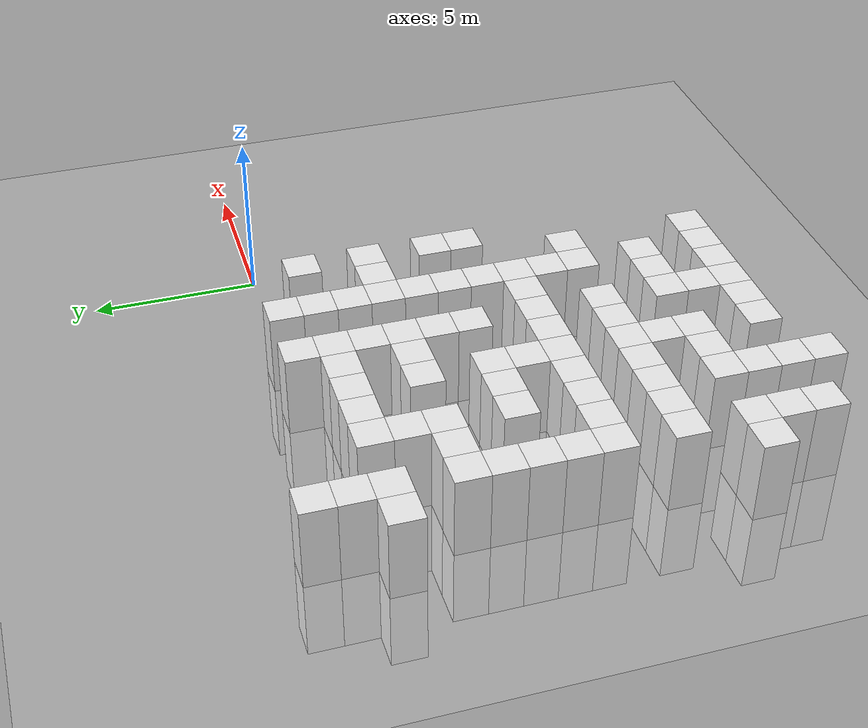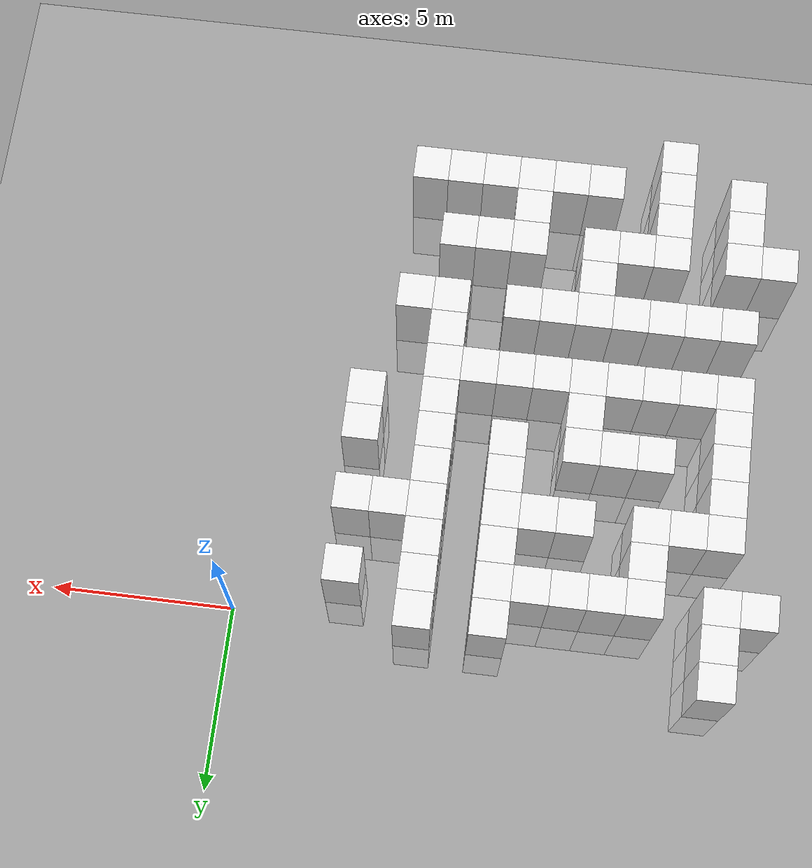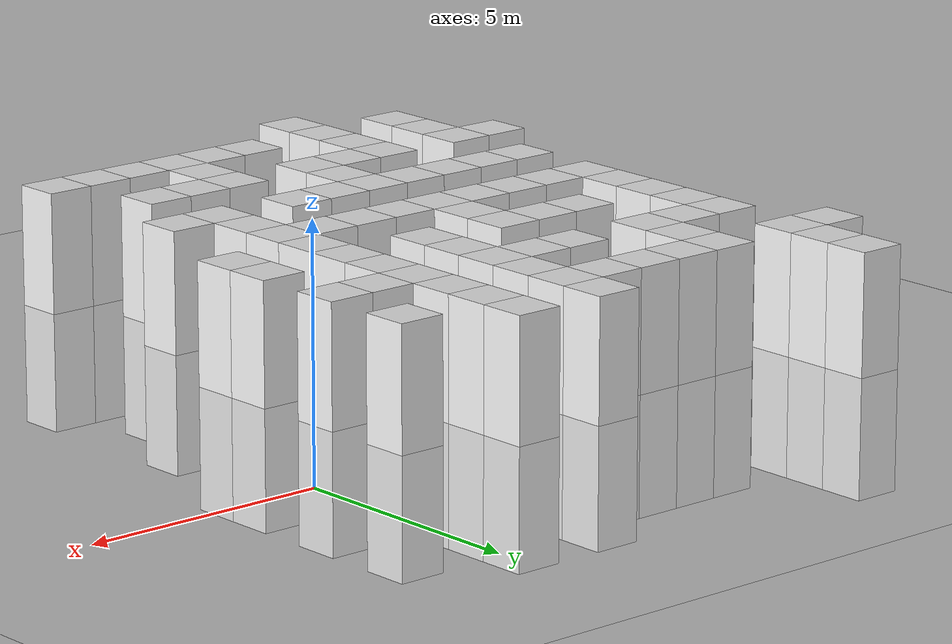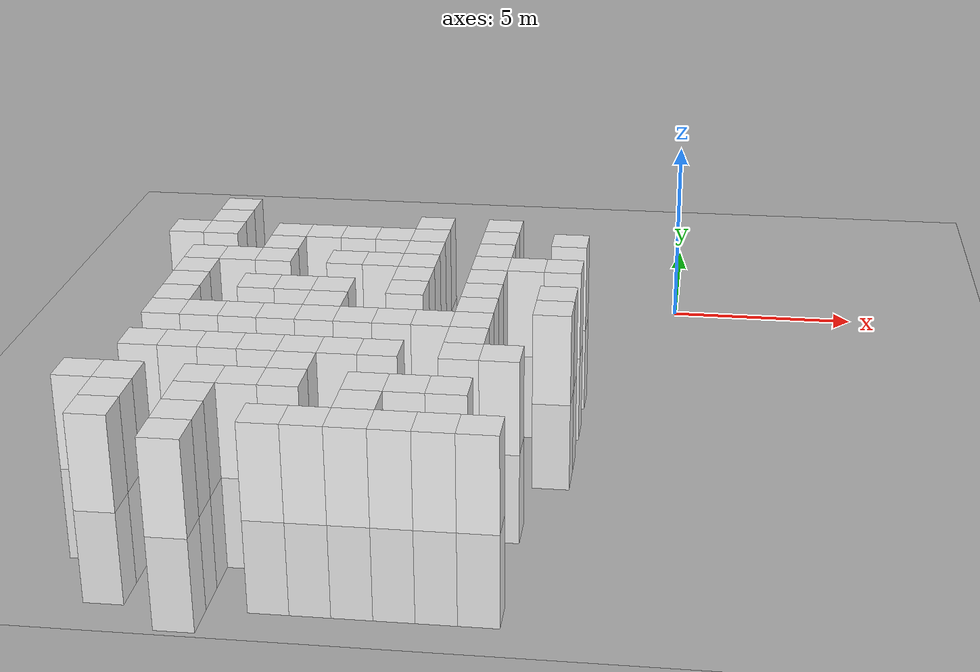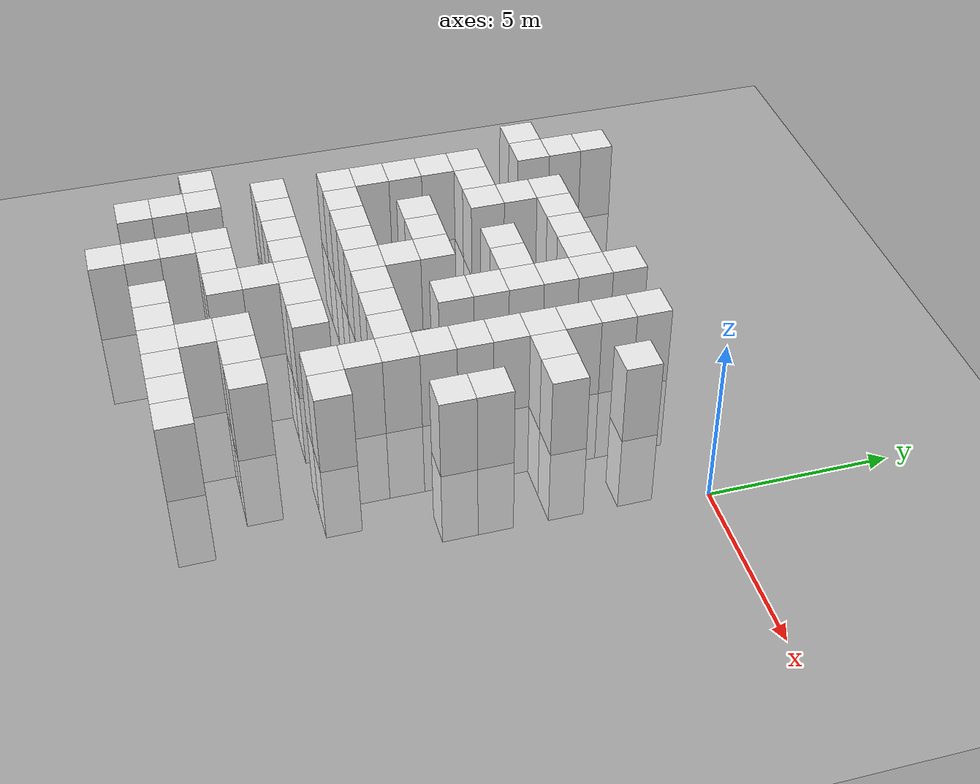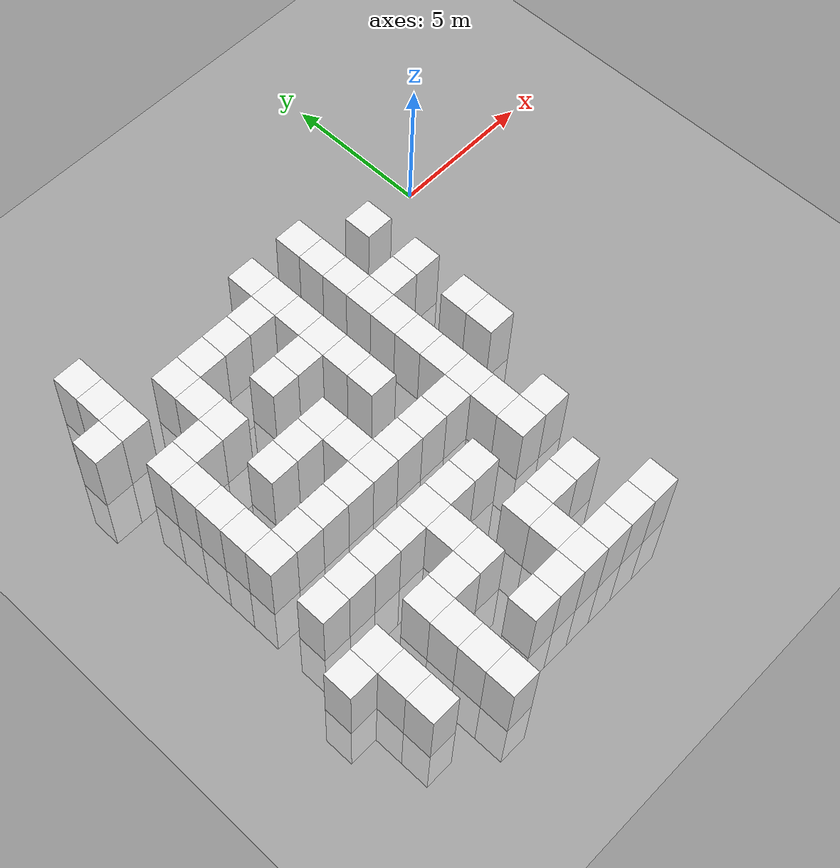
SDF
<sdf version="1.6">
 <world name="default">
  <model name="ground_plane">
   <static>1</static>
   <link name="link">
    <collision name="collision">
     <geometry><plane><normal>0 0 1</normal><size>100 100</size></plane></geometry>
     <surface><friction><ode><mu>100</mu><mu2>50</mu2></ode></friction></surface>
    </collision>
    <visual name="visual">
     <cast_shadows>0</cast_shadows>
     <geometry><plane><normal>0 0 1</normal><size>100 100</size></plane></geometry>
     <material>
      <script><uri>file://media/materials/scripts/gazebo.material</uri><name>Gazebo/Grey</name></script>
     </material>
    </visual>
   </link>
  </model>
  <model name="Unit_box_-13_1">
   <pose>-13 1 0 0 0 0</pose>
   <link name="Unit_box_-13_1_collision">
    <collision name="collision"><geometry><box><size>1 1 5</size></box></geometry></collision>
    <visual name="Unit_box_-13_1_visual">
     <geometry><box><size>1 1 5</size></box></geometry>
     <material>
      <script><name>Gazebo/White</name><uri>file://media/materials/scripts/gazebo.material</uri></script>
     </material>
    </visual>
   </link>
   <static>1</static>
  </model>
  <model name="Unit_box_-13_0">
   <pose>-13 0 0 0 0 0</pose>
   <link name="Unit_box_-13_0_collision">
    <collision name="collision"><geometry><box><size>1 1 5</size></box></geometry></collision>
    <visual name="Unit_box_-13_0_visual">
     <geometry><box><size>1 1 5</size></box></geometry>
     <material>
      <script><name>Gazebo/White</name><uri>file://media/materials/scripts/gazebo.material</uri></script>
     </material>
    </visual>
   </link>
   <static>1</static>
  </model>
  <model name="Unit_box_-7_0">
   <pose>-7 0 0 0 0 0</pose>
   <link name="Unit_box_-7_0_collision">
    <collision name="collision"><geometry><box><size>1 1 5</size></box></geometry></collision>
    <visual name="Unit_box_-7_0_visual">
     <geometry><box><size>1 1 5</size></box></geometry>
     <material>
      <script><name>Gazebo/White</name><uri>file://media/materials/scripts/gazebo.material</uri></script>
     </material>
    </visual>
   </link>
   <static>1</static>
  </model>
  <model name="Unit_box_-5_0">
   <pose>-5 0 0 0 0 0</pose>
   <link name="Unit_box_-5_0_collision">
    <collision name="collision"><geometry><box><size>1 1 5</size></box></geometry></collision>
    <visual name="Unit_box_-5_0_visual">
     <geometry><box><size>1 1 5</size></box></geometry>
     <material>
      <script><name>Gazebo/White</name><uri>file://media/materials/scripts/gazebo.material</uri></script>
     </material>
    </visual>
   </link>
   <static>1</static>
  </model>
  <model name="Unit_box_-14_-1">
   <pose>-14 -1 0 0 0 0</pose>
   <link name="Unit_box_-14_-1_collision">
    <collision name="collision"><geometry><box><size>1 1 5</size></box></geometry></collision>
    <visual name="Unit_box_-14_-1_visual">
     <geometry><box><size>1 1 5</size></box></geometry>
     <material>
      <script><name>Gazebo/White</name><uri>file://media/materials/scripts/gazebo.material</uri></script>
     </material>
    </visual>
   </link>
   <static>1</static>
  </model>
  <model name="Unit_box_-13_-1">
   <pose>-13 -1 0 0 0 0</pose>
   <link name="Unit_box_-13_-1_collision">
    <collision name="collision"><geometry><box><size>1 1 5</size></box></geometry></collision>
    <visual name="Unit_box_-13_-1_visual">
     <geometry><box><size>1 1 5</size></box></geometry>
     <material>
      <script><name>Gazebo/White</name><uri>file://media/materials/scripts/gazebo.material</uri></script>
     </material>
    </visual>
   </link>
   <static>1</static>
  </model>
  <model name="Unit_box_-11_-1">
   <pose>-11 -1 0 0 0 0</pose>
   <link name="Unit_box_-11_-1_collision">
    <collision name="collision"><geometry><box><size>1 1 5</size></box></geometry></collision>
    <visual name="Unit_box_-11_-1_visual">
     <geometry><box><size>1 1 5</size></box></geometry>
     <material>
      <script><name>Gazebo/White</name><uri>file://media/materials/scripts/gazebo.material</uri></script>
     </material>
    </visual>
   </link>
   <static>1</static>
  </model>
  <model name="Unit_box_-10_-1">
   <pose>-10 -1 0 0 0 0</pose>
   <link name="Unit_box_-10_-1_collision">
    <collision name="collision"><geometry><box><size>1 1 5</size></box></geometry></collision>
    <visual name="Unit_box_-10_-1_visual">
     <geometry><box><size>1 1 5</size></box></geometry>
     <material>
      <script><name>Gazebo/White</name><uri>file://media/materials/scripts/gazebo.material</uri></script>
     </material>
    </visual>
   </link>
   <static>1</static>
  </model>
  <model name="Unit_box_-9_-1">
   <pose>-9 -1 0 0 0 0</pose>
   <link name="Unit_box_-9_-1_collision">
    <collision name="collision"><geometry><box><size>1 1 5</size></box></geometry></collision>
    <visual name="Unit_box_-9_-1_visual">
     <geometry><box><size>1 1 5</size></box></geometry>
     <material>
      <script><name>Gazebo/White</name><uri>file://media/materials/scripts/gazebo.material</uri></script>
     </material>
    </visual>
   </link>
   <static>1</static>
  </model>
  <model name="Unit_box_-8_-1">
   <pose>-8 -1 0 0 0 0</pose>
   <link name="Unit_box_-8_-1_collision">
    <collision name="collision"><geometry><box><size>1 1 5</size></box></geometry></collision>
    <visual name="Unit_box_-8_-1_visual">
     <geometry><box><size>1 1 5</size></box></geometry>
     <material>
      <script><name>Gazebo/White</name><uri>file://media/materials/scripts/gazebo.material</uri></script>
     </material>
    </visual>
   </link>
   <static>1</static>
  </model>
  <model name="Unit_box_-7_-1">
   <pose>-7 -1 0 0 0 0</pose>
   <link name="Unit_box_-7_-1_collision">
    <collision name="collision"><geometry><box><size>1 1 5</size></box></geometry></collision>
    <visual name="Unit_box_-7_-1_visual">
     <geometry><box><size>1 1 5</size></box></geometry>
     <material>
      <script><name>Gazebo/White</name><uri>file://media/materials/scripts/gazebo.material</uri></script>
     </material>
    </visual>
   </link>
   <static>1</static>
  </model>
  <model name="Unit_box_-5_-1">
   <pose>-5 -1 0 0 0 0</pose>
   <link name="Unit_box_-5_-1_collision">
    <collision name="collision"><geometry><box><size>1 1 5</size></box></geometry></collision>
    <visual name="Unit_box_-5_-1_visual">
     <geometry><box><size>1 1 5</size></box></geometry>
     <material>
      <script><name>Gazebo/White</name><uri>file://media/materials/scripts/gazebo.material</uri></script>
     </material>
    </visual>
   </link>
   <static>1</static>
  </model>
  <model name="Unit_box_-3_-1">
   <pose>-3 -1 0 0 0 0</pose>
   <link name="Unit_box_-3_-1_collision">
    <collision name="collision"><geometry><box><size>1 1 5</size></box></geometry></collision>
    <visual name="Unit_box_-3_-1_visual">
     <geometry><box><size>1 1 5</size></box></geometry>
     <material>
      <script><name>Gazebo/White</name><uri>file://media/materials/scripts/gazebo.material</uri></script>
     </material>
    </visual>
   </link>
   <static>1</static>
  </model>
  <model name="Unit_box_-11_-2">
   <pose>-11 -2 0 0 0 0</pose>
   <link name="Unit_box_-11_-2_collision">
    <collision name="collision"><geometry><box><size>1 1 5</size></box></geometry></collision>
    <visual name="Unit_box_-11_-2_visual">
     <geometry><box><size>1 1 5</size></box></geometry>
     <material>
      <script><name>Gazebo/White</name><uri>file://media/materials/scripts/gazebo.material</uri></script>
     </material>
    </visual>
   </link>
   <static>1</static>
  </model>
  <model name="Unit_box_-7_-2">
   <pose>-7 -2 0 0 0 0</pose>
   <link name="Unit_box_-7_-2_collision">
    <collision name="collision"><geometry><box><size>1 1 5</size></box></geometry></collision>
    <visual name="Unit_box_-7_-2_visual">
     <geometry><box><size>1 1 5</size></box></geometry>
     <material>
      <script><name>Gazebo/White</name><uri>file://media/materials/scripts/gazebo.material</uri></script>
     </material>
    </visual>
   </link>
   <static>1</static>
  </model>
  <model name="Unit_box_-5_-2">
   <pose>-5 -2 0 0 0 0</pose>
   <link name="Unit_box_-5_-2_collision">
    <collision name="collision"><geometry><box><size>1 1 5</size></box></geometry></collision>
    <visual name="Unit_box_-5_-2_visual">
     <geometry><box><size>1 1 5</size></box></geometry>
     <material>
      <script><name>Gazebo/White</name><uri>file://media/materials/scripts/gazebo.material</uri></script>
     </material>
    </visual>
   </link>
   <static>1</static>
  </model>
  <model name="Unit_box_-13_-3">
   <pose>-13 -3 0 0 0 0</pose>
   <link name="Unit_box_-13_-3_collision">
    <collision name="collision"><geometry><box><size>1 1 5</size></box></geometry></collision>
    <visual name="Unit_box_-13_-3_visual">
     <geometry><box><size>1 1 5</size></box></geometry>
     <material>
      <script><name>Gazebo/White</name><uri>file://media/materials/scripts/gazebo.material</uri></script>
     </material>
    </visual>
   </link>
   <static>1</static>
  </model>
  <model name="Unit_box_-12_-3">
   <pose>-12 -3 0 0 0 0</pose>
   <link name="Unit_box_-12_-3_collision">
    <collision name="collision"><geometry><box><size>1 1 5</size></box></geometry></collision>
    <visual name="Unit_box_-12_-3_visual">
     <geometry><box><size>1 1 5</size></box></geometry>
     <material>
      <script><name>Gazebo/White</name><uri>file://media/materials/scripts/gazebo.material</uri></script>
     </material>
    </visual>
   </link>
   <static>1</static>
  </model>
  <model name="Unit_box_-11_-3">
   <pose>-11 -3 0 0 0 0</pose>
   <link name="Unit_box_-11_-3_collision">
    <collision name="collision"><geometry><box><size>1 1 5</size></box></geometry></collision>
    <visual name="Unit_box_-11_-3_visual">
     <geometry><box><size>1 1 5</size></box></geometry>
     <material>
      <script><name>Gazebo/White</name><uri>file://media/materials/scripts/gazebo.material</uri></script>
     </material>
    </visual>
   </link>
   <static>1</static>
  </model>
  <model name="Unit_box_-9_-3">
   <pose>-9 -3 0 0 0 0</pose>
   <link name="Unit_box_-9_-3_collision">
    <collision name="collision"><geometry><box><size>1 1 5</size></box></geometry></collision>
    <visual name="Unit_box_-9_-3_visual">
     <geometry><box><size>1 1 5</size></box></geometry>
     <material>
      <script><name>Gazebo/White</name><uri>file://media/materials/scripts/gazebo.material</uri></script>
     </material>
    </visual>
   </link>
   <static>1</static>
  </model>
  <model name="Unit_box_-8_-3">
   <pose>-8 -3 0 0 0 0</pose>
   <link name="Unit_box_-8_-3_collision">
    <collision name="collision"><geometry><box><size>1 1 5</size></box></geometry></collision>
    <visual name="Unit_box_-8_-3_visual">
     <geometry><box><size>1 1 5</size></box></geometry>
     <material>
      <script><name>Gazebo/White</name><uri>file://media/materials/scripts/gazebo.material</uri></script>
     </material>
    </visual>
   </link>
   <static>1</static>
  </model>
  <model name="Unit_box_-7_-3">
   <pose>-7 -3 0 0 0 0</pose>
   <link name="Unit_box_-7_-3_collision">
    <collision name="collision"><geometry><box><size>1 1 5</size></box></geometry></collision>
    <visual name="Unit_box_-7_-3_visual">
     <geometry><box><size>1 1 5</size></box></geometry>
     <material>
      <script><name>Gazebo/White</name><uri>file://media/materials/scripts/gazebo.material</uri></script>
     </material>
    </visual>
   </link>
   <static>1</static>
  </model>
  <model name="Unit_box_-5_-3">
   <pose>-5 -3 0 0 0 0</pose>
   <link name="Unit_box_-5_-3_collision">
    <collision name="collision"><geometry><box><size>1 1 5</size></box></geometry></collision>
    <visual name="Unit_box_-5_-3_visual">
     <geometry><box><size>1 1 5</size></box></geometry>
     <material>
      <script><name>Gazebo/White</name><uri>file://media/materials/scripts/gazebo.material</uri></script>
     </material>
    </visual>
   </link>
   <static>1</static>
  </model>
  <model name="Unit_box_-4_-3">
   <pose>-4 -3 0 0 0 0</pose>
   <link name="Unit_box_-4_-3_collision">
    <collision name="collision"><geometry><box><size>1 1 5</size></box></geometry></collision>
    <visual name="Unit_box_-4_-3_visual">
     <geometry><box><size>1 1 5</size></box></geometry>
     <material>
      <script><name>Gazebo/White</name><uri>file://media/materials/scripts/gazebo.material</uri></script>
     </material>
    </visual>
   </link>
   <static>1</static>
  </model>
  <model name="Unit_box_-3_-3">
   <pose>-3 -3 0 0 0 0</pose>
   <link name="Unit_box_-3_-3_collision">
    <collision name="collision"><geometry><box><size>1 1 5</size></box></geometry></collision>
    <visual name="Unit_box_-3_-3_visual">
     <geometry><box><size>1 1 5</size></box></geometry>
     <material>
      <script><name>Gazebo/White</name><uri>file://media/materials/scripts/gazebo.material</uri></script>
     </material>
    </visual>
   </link>
   <static>1</static>
  </model>
  <model name="Unit_box_-13_-4">
   <pose>-13 -4 0 0 0 0</pose>
   <link name="Unit_box_-13_-4_collision">
    <collision name="collision"><geometry><box><size>1 1 5</size></box></geometry></collision>
    <visual name="Unit_box_-13_-4_visual">
     <geometry><box><size>1 1 5</size></box></geometry>
     <material>
      <script><name>Gazebo/White</name><uri>file://media/materials/scripts/gazebo.material</uri></script>
     </material>
    </visual>
   </link>
   <static>1</static>
  </model>
  <model name="Unit_box_-7_-4">
   <pose>-7 -4 0 0 0 0</pose>
   <link name="Unit_box_-7_-4_collision">
    <collision name="collision"><geometry><box><size>1 1 5</size></box></geometry></collision>
    <visual name="Unit_box_-7_-4_visual">
     <geometry><box><size>1 1 5</size></box></geometry>
     <material>
      <script><name>Gazebo/White</name><uri>file://media/materials/scripts/gazebo.material</uri></script>
     </material>
    </visual>
   </link>
   <static>1</static>
  </model>
  <model name="Unit_box_-5_-4">
   <pose>-5 -4 0 0 0 0</pose>
   <link name="Unit_box_-5_-4_collision">
    <collision name="collision"><geometry><box><size>1 1 5</size></box></geometry></collision>
    <visual name="Unit_box_-5_-4_visual">
     <geometry><box><size>1 1 5</size></box></geometry>
     <material>
      <script><name>Gazebo/White</name><uri>file://media/materials/scripts/gazebo.material</uri></script>
     </material>
    </visual>
   </link>
   <static>1</static>
  </model>
  <model name="Unit_box_-13_-5">
   <pose>-13 -5 0 0 0 0</pose>
   <link name="Unit_box_-13_-5_collision">
    <collision name="collision"><geometry><box><size>1 1 5</size></box></geometry></collision>
    <visual name="Unit_box_-13_-5_visual">
     <geometry><box><size>1 1 5</size></box></geometry>
     <material>
      <script><name>Gazebo/White</name><uri>file://media/materials/scripts/gazebo.material</uri></script>
     </material>
    </visual>
   </link>
   <static>1</static>
  </model>
  <model name="Unit_box_-11_-5">
   <pose>-11 -5 0 0 0 0</pose>
   <link name="Unit_box_-11_-5_collision">
    <collision name="collision"><geometry><box><size>1 1 5</size></box></geometry></collision>
    <visual name="Unit_box_-11_-5_visual">
     <geometry><box><size>1 1 5</size></box></geometry>
     <material>
      <script><name>Gazebo/White</name><uri>file://media/materials/scripts/gazebo.material</uri></script>
     </material>
    </visual>
   </link>
   <static>1</static>
  </model>
  <model name="Unit_box_-10_-5">
   <pose>-10 -5 0 0 0 0</pose>
   <link name="Unit_box_-10_-5_collision">
    <collision name="collision"><geometry><box><size>1 1 5</size></box></geometry></collision>
    <visual name="Unit_box_-10_-5_visual">
     <geometry><box><size>1 1 5</size></box></geometry>
     <material>
      <script><name>Gazebo/White</name><uri>file://media/materials/scripts/gazebo.material</uri></script>
     </material>
    </visual>
   </link>
   <static>1</static>
  </model>
  <model name="Unit_box_-9_-5">
   <pose>-9 -5 0 0 0 0</pose>
   <link name="Unit_box_-9_-5_collision">
    <collision name="collision"><geometry><box><size>1 1 5</size></box></geometry></collision>
    <visual name="Unit_box_-9_-5_visual">
     <geometry><box><size>1 1 5</size></box></geometry>
     <material>
      <script><name>Gazebo/White</name><uri>file://media/materials/scripts/gazebo.material</uri></script>
     </material>
    </visual>
   </link>
   <static>1</static>
  </model>
  <model name="Unit_box_-7_-5">
   <pose>-7 -5 0 0 0 0</pose>
   <link name="Unit_box_-7_-5_collision">
    <collision name="collision"><geometry><box><size>1 1 5</size></box></geometry></collision>
    <visual name="Unit_box_-7_-5_visual">
     <geometry><box><size>1 1 5</size></box></geometry>
     <material>
      <script><name>Gazebo/White</name><uri>file://media/materials/scripts/gazebo.material</uri></script>
     </material>
    </visual>
   </link>
   <static>1</static>
  </model>
  <model name="Unit_box_-5_-5">
   <pose>-5 -5 0 0 0 0</pose>
   <link name="Unit_box_-5_-5_collision">
    <collision name="collision"><geometry><box><size>1 1 5</size></box></geometry></collision>
    <visual name="Unit_box_-5_-5_visual">
     <geometry><box><size>1 1 5</size></box></geometry>
     <material>
      <script><name>Gazebo/White</name><uri>file://media/materials/scripts/gazebo.material</uri></script>
     </material>
    </visual>
   </link>
   <static>1</static>
  </model>
  <model name="Unit_box_-3_-5">
   <pose>-3 -5 0 0 0 0</pose>
   <link name="Unit_box_-3_-5_collision">
    <collision name="collision"><geometry><box><size>1 1 5</size></box></geometry></collision>
    <visual name="Unit_box_-3_-5_visual">
     <geometry><box><size>1 1 5</size></box></geometry>
     <material>
      <script><name>Gazebo/White</name><uri>file://media/materials/scripts/gazebo.material</uri></script>
     </material>
    </visual>
   </link>
   <static>1</static>
  </model>
  <model name="Unit_box_-13_-6">
   <pose>-13 -6 0 0 0 0</pose>
   <link name="Unit_box_-13_-6_collision">
    <collision name="collision"><geometry><box><size>1 1 5</size></box></geometry></collision>
    <visual name="Unit_box_-13_-6_visual">
     <geometry><box><size>1 1 5</size></box></geometry>
     <material>
      <script><name>Gazebo/White</name><uri>file://media/materials/scripts/gazebo.material</uri></script>
     </material>
    </visual>
   </link>
   <static>1</static>
  </model>
  <model name="Unit_box_-9_-6">
   <pose>-9 -6 0 0 0 0</pose>
   <link name="Unit_box_-9_-6_collision">
    <collision name="collision"><geometry><box><size>1 1 5</size></box></geometry></collision>
    <visual name="Unit_box_-9_-6_visual">
     <geometry><box><size>1 1 5</size></box></geometry>
     <material>
      <script><name>Gazebo/White</name><uri>file://media/materials/scripts/gazebo.material</uri></script>
     </material>
    </visual>
   </link>
   <static>1</static>
  </model>
  <model name="Unit_box_-5_-6">
   <pose>-5 -6 0 0 0 0</pose>
   <link name="Unit_box_-5_-6_collision">
    <collision name="collision"><geometry><box><size>1 1 5</size></box></geometry></collision>
    <visual name="Unit_box_-5_-6_visual">
     <geometry><box><size>1 1 5</size></box></geometry>
     <material>
      <script><name>Gazebo/White</name><uri>file://media/materials/scripts/gazebo.material</uri></script>
     </material>
    </visual>
   </link>
   <static>1</static>
  </model>
  <model name="Unit_box_-3_-6">
   <pose>-3 -6 0 0 0 0</pose>
   <link name="Unit_box_-3_-6_collision">
    <collision name="collision"><geometry><box><size>1 1 5</size></box></geometry></collision>
    <visual name="Unit_box_-3_-6_visual">
     <geometry><box><size>1 1 5</size></box></geometry>
     <material>
      <script><name>Gazebo/White</name><uri>file://media/materials/scripts/gazebo.material</uri></script>
     </material>
    </visual>
   </link>
   <static>1</static>
  </model>
  <model name="Unit_box_-13_-7">
   <pose>-13 -7 0 0 0 0</pose>
   <link name="Unit_box_-13_-7_collision">
    <collision name="collision"><geometry><box><size>1 1 5</size></box></geometry></collision>
    <visual name="Unit_box_-13_-7_visual">
     <geometry><box><size>1 1 5</size></box></geometry>
     <material>
      <script><name>Gazebo/White</name><uri>file://media/materials/scripts/gazebo.material</uri></script>
     </material>
    </visual>
   </link>
   <static>1</static>
  </model>
  <model name="Unit_box_-12_-7">
   <pose>-12 -7 0 0 0 0</pose>
   <link name="Unit_box_-12_-7_collision">
    <collision name="collision"><geometry><box><size>1 1 5</size></box></geometry></collision>
    <visual name="Unit_box_-12_-7_visual">
     <geometry><box><size>1 1 5</size></box></geometry>
     <material>
      <script><name>Gazebo/White</name><uri>file://media/materials/scripts/gazebo.material</uri></script>
     </material>
    </visual>
   </link>
   <static>1</static>
  </model>
  <model name="Unit_box_-11_-7">
   <pose>-11 -7 0 0 0 0</pose>
   <link name="Unit_box_-11_-7_collision">
    <collision name="collision"><geometry><box><size>1 1 5</size></box></geometry></collision>
    <visual name="Unit_box_-11_-7_visual">
     <geometry><box><size>1 1 5</size></box></geometry>
     <material>
      <script><name>Gazebo/White</name><uri>file://media/materials/scripts/gazebo.material</uri></script>
     </material>
    </visual>
   </link>
   <static>1</static>
  </model>
  <model name="Unit_box_-10_-7">
   <pose>-10 -7 0 0 0 0</pose>
   <link name="Unit_box_-10_-7_collision">
    <collision name="collision"><geometry><box><size>1 1 5</size></box></geometry></collision>
    <visual name="Unit_box_-10_-7_visual">
     <geometry><box><size>1 1 5</size></box></geometry>
     <material>
      <script><name>Gazebo/White</name><uri>file://media/materials/scripts/gazebo.material</uri></script>
     </material>
    </visual>
   </link>
   <static>1</static>
  </model>
  <model name="Unit_box_-9_-7">
   <pose>-9 -7 0 0 0 0</pose>
   <link name="Unit_box_-9_-7_collision">
    <collision name="collision"><geometry><box><size>1 1 5</size></box></geometry></collision>
    <visual name="Unit_box_-9_-7_visual">
     <geometry><box><size>1 1 5</size></box></geometry>
     <material>
      <script><name>Gazebo/White</name><uri>file://media/materials/scripts/gazebo.material</uri></script>
     </material>
    </visual>
   </link>
   <static>1</static>
  </model>
  <model name="Unit_box_-8_-7">
   <pose>-8 -7 0 0 0 0</pose>
   <link name="Unit_box_-8_-7_collision">
    <collision name="collision"><geometry><box><size>1 1 5</size></box></geometry></collision>
    <visual name="Unit_box_-8_-7_visual">
     <geometry><box><size>1 1 5</size></box></geometry>
     <material>
      <script><name>Gazebo/White</name><uri>file://media/materials/scripts/gazebo.material</uri></script>
     </material>
    </visual>
   </link>
   <static>1</static>
  </model>
  <model name="Unit_box_-7_-7">
   <pose>-7 -7 0 0 0 0</pose>
   <link name="Unit_box_-7_-7_collision">
    <collision name="collision"><geometry><box><size>1 1 5</size></box></geometry></collision>
    <visual name="Unit_box_-7_-7_visual">
     <geometry><box><size>1 1 5</size></box></geometry>
     <material>
      <script><name>Gazebo/White</name><uri>file://media/materials/scripts/gazebo.material</uri></script>
     </material>
    </visual>
   </link>
   <static>1</static>
  </model>
  <model name="Unit_box_-6_-7">
   <pose>-6 -7 0 0 0 0</pose>
   <link name="Unit_box_-6_-7_collision">
    <collision name="collision"><geometry><box><size>1 1 5</size></box></geometry></collision>
    <visual name="Unit_box_-6_-7_visual">
     <geometry><box><size>1 1 5</size></box></geometry>
     <material>
      <script><name>Gazebo/White</name><uri>file://media/materials/scripts/gazebo.material</uri></script>
     </material>
    </visual>
   </link>
   <static>1</static>
  </model>
  <model name="Unit_box_-5_-7">
   <pose>-5 -7 0 0 0 0</pose>
   <link name="Unit_box_-5_-7_collision">
    <collision name="collision"><geometry><box><size>1 1 5</size></box></geometry></collision>
    <visual name="Unit_box_-5_-7_visual">
     <geometry><box><size>1 1 5</size></box></geometry>
     <material>
      <script><name>Gazebo/White</name><uri>file://media/materials/scripts/gazebo.material</uri></script>
     </material>
    </visual>
   </link>
   <static>1</static>
  </model>
  <model name="Unit_box_-5_-8">
   <pose>-5 -8 0 0 0 0</pose>
   <link name="Unit_box_-5_-8_collision">
    <collision name="collision"><geometry><box><size>1 1 5</size></box></geometry></collision>
    <visual name="Unit_box_-5_-8_visual">
     <geometry><box><size>1 1 5</size></box></geometry>
     <material>
      <script><name>Gazebo/White</name><uri>file://media/materials/scripts/gazebo.material</uri></script>
     </material>
    </visual>
   </link>
   <static>1</static>
  </model>
  <model name="Unit_box_-13_-9">
   <pose>-13 -9 0 0 0 0</pose>
   <link name="Unit_box_-13_-9_collision">
    <collision name="collision"><geometry><box><size>1 1 5</size></box></geometry></collision>
    <visual name="Unit_box_-13_-9_visual">
     <geometry><box><size>1 1 5</size></box></geometry>
     <material>
      <script><name>Gazebo/White</name><uri>file://media/materials/scripts/gazebo.material</uri></script>
     </material>
    </visual>
   </link>
   <static>1</static>
  </model>
  <model name="Unit_box_-12_-9">
   <pose>-12 -9 0 0 0 0</pose>
   <link name="Unit_box_-12_-9_collision">
    <collision name="collision"><geometry><box><size>1 1 5</size></box></geometry></collision>
    <visual name="Unit_box_-12_-9_visual">
     <geometry><box><size>1 1 5</size></box></geometry>
     <material>
      <script><name>Gazebo/White</name><uri>file://media/materials/scripts/gazebo.material</uri></script>
     </material>
    </visual>
   </link>
   <static>1</static>
  </model>
  <model name="Unit_box_-11_-9">
   <pose>-11 -9 0 0 0 0</pose>
   <link name="Unit_box_-11_-9_collision">
    <collision name="collision"><geometry><box><size>1 1 5</size></box></geometry></collision>
    <visual name="Unit_box_-11_-9_visual">
     <geometry><box><size>1 1 5</size></box></geometry>
     <material>
      <script><name>Gazebo/White</name><uri>file://media/materials/scripts/gazebo.material</uri></script>
     </material>
    </visual>
   </link>
   <static>1</static>
  </model>
  <model name="Unit_box_-10_-9">
   <pose>-10 -9 0 0 0 0</pose>
   <link name="Unit_box_-10_-9_collision">
    <collision name="collision"><geometry><box><size>1 1 5</size></box></geometry></collision>
    <visual name="Unit_box_-10_-9_visual">
     <geometry><box><size>1 1 5</size></box></geometry>
     <material>
      <script><name>Gazebo/White</name><uri>file://media/materials/scripts/gazebo.material</uri></script>
     </material>
    </visual>
   </link>
   <static>1</static>
  </model>
  <model name="Unit_box_-9_-9">
   <pose>-9 -9 0 0 0 0</pose>
   <link name="Unit_box_-9_-9_collision">
    <collision name="collision"><geometry><box><size>1 1 5</size></box></geometry></collision>
    <visual name="Unit_box_-9_-9_visual">
     <geometry><box><size>1 1 5</size></box></geometry>
     <material>
      <script><name>Gazebo/White</name><uri>file://media/materials/scripts/gazebo.material</uri></script>
     </material>
    </visual>
   </link>
   <static>1</static>
  </model>
  <model name="Unit_box_-8_-9">
   <pose>-8 -9 0 0 0 0</pose>
   <link name="Unit_box_-8_-9_collision">
    <collision name="collision"><geometry><box><size>1 1 5</size></box></geometry></collision>
    <visual name="Unit_box_-8_-9_visual">
     <geometry><box><size>1 1 5</size></box></geometry>
     <material>
      <script><name>Gazebo/White</name><uri>file://media/materials/scripts/gazebo.material</uri></script>
     </material>
    </visual>
   </link>
   <static>1</static>
  </model>
  <model name="Unit_box_-7_-9">
   <pose>-7 -9 0 0 0 0</pose>
   <link name="Unit_box_-7_-9_collision">
    <collision name="collision"><geometry><box><size>1 1 5</size></box></geometry></collision>
    <visual name="Unit_box_-7_-9_visual">
     <geometry><box><size>1 1 5</size></box></geometry>
     <material>
      <script><name>Gazebo/White</name><uri>file://media/materials/scripts/gazebo.material</uri></script>
     </material>
    </visual>
   </link>
   <static>1</static>
  </model>
  <model name="Unit_box_-5_-9">
   <pose>-5 -9 0 0 0 0</pose>
   <link name="Unit_box_-5_-9_collision">
    <collision name="collision"><geometry><box><size>1 1 5</size></box></geometry></collision>
    <visual name="Unit_box_-5_-9_visual">
     <geometry><box><size>1 1 5</size></box></geometry>
     <material>
      <script><name>Gazebo/White</name><uri>file://media/materials/scripts/gazebo.material</uri></script>
     </material>
    </visual>
   </link>
   <static>1</static>
  </model>
  <model name="Unit_box_-4_-9">
   <pose>-4 -9 0 0 0 0</pose>
   <link name="Unit_box_-4_-9_collision">
    <collision name="collision"><geometry><box><size>1 1 5</size></box></geometry></collision>
    <visual name="Unit_box_-4_-9_visual">
     <geometry><box><size>1 1 5</size></box></geometry>
     <material>
      <script><name>Gazebo/White</name><uri>file://media/materials/scripts/gazebo.material</uri></script>
     </material>
    </visual>
   </link>
   <static>1</static>
  </model>
  <model name="Unit_box_-9_-10">
   <pose>-9 -10 0 0 0 0</pose>
   <link name="Unit_box_-9_-10_collision">
    <collision name="collision"><geometry><box><size>1 1 5</size></box></geometry></collision>
    <visual name="Unit_box_-9_-10_visual">
     <geometry><box><size>1 1 5</size></box></geometry>
     <material>
      <script><name>Gazebo/White</name><uri>file://media/materials/scripts/gazebo.material</uri></script>
     </material>
    </visual>
   </link>
   <static>1</static>
  </model>
  <model name="Unit_box_-14_-11">
   <pose>-14 -11 0 0 0 0</pose>
   <link name="Unit_box_-14_-11_collision">
    <collision name="collision"><geometry><box><size>1 1 5</size></box></geometry></collision>
    <visual name="Unit_box_-14_-11_visual">
     <geometry><box><size>1 1 5</size></box></geometry>
     <material>
      <script><name>Gazebo/White</name><uri>file://media/materials/scripts/gazebo.material</uri></script>
     </material>
    </visual>
   </link>
   <static>1</static>
  </model>
  <model name="Unit_box_-13_-11">
   <pose>-13 -11 0 0 0 0</pose>
   <link name="Unit_box_-13_-11_collision">
    <collision name="collision"><geometry><box><size>1 1 5</size></box></geometry></collision>
    <visual name="Unit_box_-13_-11_visual">
     <geometry><box><size>1 1 5</size></box></geometry>
     <material>
      <script><name>Gazebo/White</name><uri>file://media/materials/scripts/gazebo.material</uri></script>
     </material>
    </visual>
   </link>
   <static>1</static>
  </model>
  <model name="Unit_box_-11_-11">
   <pose>-11 -11 0 0 0 0</pose>
   <link name="Unit_box_-11_-11_collision">
    <collision name="collision"><geometry><box><size>1 1 5</size></box></geometry></collision>
    <visual name="Unit_box_-11_-11_visual">
     <geometry><box><size>1 1 5</size></box></geometry>
     <material>
      <script><name>Gazebo/White</name><uri>file://media/materials/scripts/gazebo.material</uri></script>
     </material>
    </visual>
   </link>
   <static>1</static>
  </model>
  <model name="Unit_box_-10_-11">
   <pose>-10 -11 0 0 0 0</pose>
   <link name="Unit_box_-10_-11_collision">
    <collision name="collision"><geometry><box><size>1 1 5</size></box></geometry></collision>
    <visual name="Unit_box_-10_-11_visual">
     <geometry><box><size>1 1 5</size></box></geometry>
     <material>
      <script><name>Gazebo/White</name><uri>file://media/materials/scripts/gazebo.material</uri></script>
     </material>
    </visual>
   </link>
   <static>1</static>
  </model>
  <model name="Unit_box_-9_-11">
   <pose>-9 -11 0 0 0 0</pose>
   <link name="Unit_box_-9_-11_collision">
    <collision name="collision"><geometry><box><size>1 1 5</size></box></geometry></collision>
    <visual name="Unit_box_-9_-11_visual">
     <geometry><box><size>1 1 5</size></box></geometry>
     <material>
      <script><name>Gazebo/White</name><uri>file://media/materials/scripts/gazebo.material</uri></script>
     </material>
    </visual>
   </link>
   <static>1</static>
  </model>
  <model name="Unit_box_-7_-11">
   <pose>-7 -11 0 0 0 0</pose>
   <link name="Unit_box_-7_-11_collision">
    <collision name="collision"><geometry><box><size>1 1 5</size></box></geometry></collision>
    <visual name="Unit_box_-7_-11_visual">
     <geometry><box><size>1 1 5</size></box></geometry>
     <material>
      <script><name>Gazebo/White</name><uri>file://media/materials/scripts/gazebo.material</uri></script>
     </material>
    </visual>
   </link>
   <static>1</static>
  </model>
  <model name="Unit_box_-6_-11">
   <pose>-6 -11 0 0 0 0</pose>
   <link name="Unit_box_-6_-11_collision">
    <collision name="collision"><geometry><box><size>1 1 5</size></box></geometry></collision>
    <visual name="Unit_box_-6_-11_visual">
     <geometry><box><size>1 1 5</size></box></geometry>
     <material>
      <script><name>Gazebo/White</name><uri>file://media/materials/scripts/gazebo.material</uri></script>
     </material>
    </visual>
   </link>
   <static>1</static>
  </model>
  <model name="Unit_box_-5_-11">
   <pose>-5 -11 0 0 0 0</pose>
   <link name="Unit_box_-5_-11_collision">
    <collision name="collision"><geometry><box><size>1 1 5</size></box></geometry></collision>
    <visual name="Unit_box_-5_-11_visual">
     <geometry><box><size>1 1 5</size></box></geometry>
     <material>
      <script><name>Gazebo/White</name><uri>file://media/materials/scripts/gazebo.material</uri></script>
     </material>
    </visual>
   </link>
   <static>1</static>
  </model>
  <model name="Unit_box_-13_-12">
   <pose>-13 -12 0 0 0 0</pose>
   <link name="Unit_box_-13_-12_collision">
    <collision name="collision"><geometry><box><size>1 1 5</size></box></geometry></collision>
    <visual name="Unit_box_-13_-12_visual">
     <geometry><box><size>1 1 5</size></box></geometry>
     <material>
      <script><name>Gazebo/White</name><uri>file://media/materials/scripts/gazebo.material</uri></script>
     </material>
    </visual>
   </link>
   <static>1</static>
  </model>
  <model name="Unit_box_-11_-12">
   <pose>-11 -12 0 0 0 0</pose>
   <link name="Unit_box_-11_-12_collision">
    <collision name="collision"><geometry><box><size>1 1 5</size></box></geometry></collision>
    <visual name="Unit_box_-11_-12_visual">
     <geometry><box><size>1 1 5</size></box></geometry>
     <material>
      <script><name>Gazebo/White</name><uri>file://media/materials/scripts/gazebo.material</uri></script>
     </material>
    </visual>
   </link>
   <static>1</static>
  </model>
  <model name="Unit_box_-7_-12">
   <pose>-7 -12 0 0 0 0</pose>
   <link name="Unit_box_-7_-12_collision">
    <collision name="collision"><geometry><box><size>1 1 5</size></box></geometry></collision>
    <visual name="Unit_box_-7_-12_visual">
     <geometry><box><size>1 1 5</size></box></geometry>
     <material>
      <script><name>Gazebo/White</name><uri>file://media/materials/scripts/gazebo.material</uri></script>
     </material>
    </visual>
   </link>
   <static>1</static>
  </model>
  <model name="Unit_box_-13_-13">
   <pose>-13 -13 0 0 0 0</pose>
   <link name="Unit_box_-13_-13_collision">
    <collision name="collision"><geometry><box><size>1 1 5</size></box></geometry></collision>
    <visual name="Unit_box_-13_-13_visual">
     <geometry><box><size>1 1 5</size></box></geometry>
     <material>
      <script><name>Gazebo/White</name><uri>file://media/materials/scripts/gazebo.material</uri></script>
     </material>
    </visual>
   </link>
   <static>1</static>
  </model>
  <model name="Unit_box_-11_-13">
   <pose>-11 -13 0 0 0 0</pose>
   <link name="Unit_box_-11_-13_collision">
    <collision name="collision"><geometry><box><size>1 1 5</size></box></geometry></collision>
    <visual name="Unit_box_-11_-13_visual">
     <geometry><box><size>1 1 5</size></box></geometry>
     <material>
      <script><name>Gazebo/White</name><uri>file://media/materials/scripts/gazebo.material</uri></script>
     </material>
    </visual>
   </link>
   <static>1</static>
  </model>
  <model name="Unit_box_-9_-13">
   <pose>-9 -13 0 0 0 0</pose>
   <link name="Unit_box_-9_-13_collision">
    <collision name="collision"><geometry><box><size>1 1 5</size></box></geometry></collision>
    <visual name="Unit_box_-9_-13_visual">
     <geometry><box><size>1 1 5</size></box></geometry>
     <material>
      <script><name>Gazebo/White</name><uri>file://media/materials/scripts/gazebo.material</uri></script>
     </material>
    </visual>
   </link>
   <static>1</static>
  </model>
  <model name="Unit_box_-8_-13">
   <pose>-8 -13 0 0 0 0</pose>
   <link name="Unit_box_-8_-13_collision">
    <collision name="collision"><geometry><box><size>1 1 5</size></box></geometry></collision>
    <visual name="Unit_box_-8_-13_visual">
     <geometry><box><size>1 1 5</size></box></geometry>
     <material>
      <script><name>Gazebo/White</name><uri>file://media/materials/scripts/gazebo.material</uri></script>
     </material>
    </visual>
   </link>
   <static>1</static>
  </model>
  <model name="Unit_box_-7_-13">
   <pose>-7 -13 0 0 0 0</pose>
   <link name="Unit_box_-7_-13_collision">
    <collision name="collision"><geometry><box><size>1 1 5</size></box></geometry></collision>
    <visual name="Unit_box_-7_-13_visual">
     <geometry><box><size>1 1 5</size></box></geometry>
     <material>
      <script><name>Gazebo/White</name><uri>file://media/materials/scripts/gazebo.material</uri></script>
     </material>
    </visual>
   </link>
   <static>1</static>
  </model>
  <model name="Unit_box_-6_-13">
   <pose>-6 -13 0 0 0 0</pose>
   <link name="Unit_box_-6_-13_collision">
    <collision name="collision"><geometry><box><size>1 1 5</size></box></geometry></collision>
    <visual name="Unit_box_-6_-13_visual">
     <geometry><box><size>1 1 5</size></box></geometry>
     <material>
      <script><name>Gazebo/White</name><uri>file://media/materials/scripts/gazebo.material</uri></script>
     </material>
    </visual>
   </link>
   <static>1</static>
  </model>
  <model name="Unit_box_-5_-13">
   <pose>-5 -13 0 0 0 0</pose>
   <link name="Unit_box_-5_-13_collision">
    <collision name="collision"><geometry><box><size>1 1 5</size></box></geometry></collision>
    <visual name="Unit_box_-5_-13_visual">
     <geometry><box><size>1 1 5</size></box></geometry>
     <material>
      <script><name>Gazebo/White</name><uri>file://media/materials/scripts/gazebo.material</uri></script>
     </material>
    </visual>
   </link>
   <static>1</static>
  </model>
  <model name="Unit_box_-4_-13">
   <pose>-4 -13 0 0 0 0</pose>
   <link name="Unit_box_-4_-13_collision">
    <collision name="collision"><geometry><box><size>1 1 5</size></box></geometry></collision>
    <visual name="Unit_box_-4_-13_visual">
     <geometry><box><size>1 1 5</size></box></geometry>
     <material>
      <script><name>Gazebo/White</name><uri>file://media/materials/scripts/gazebo.material</uri></script>
     </material>
    </visual>
   </link>
   <static>1</static>
  </model>
  <model name="Unit_box_-11_-14">
   <pose>-11 -14 0 0 0 0</pose>
   <link name="Unit_box_-11_-14_collision">
    <collision name="collision"><geometry><box><size>1 1 5</size></box></geometry></collision>
    <visual name="Unit_box_-11_-14_visual">
     <geometry><box><size>1 1 5</size></box></geometry>
     <material>
      <script><name>Gazebo/White</name><uri>file://media/materials/scripts/gazebo.material</uri></script>
     </material>
    </visual>
   </link>
   <static>1</static>
  </model>
 </world>
</sdf>
